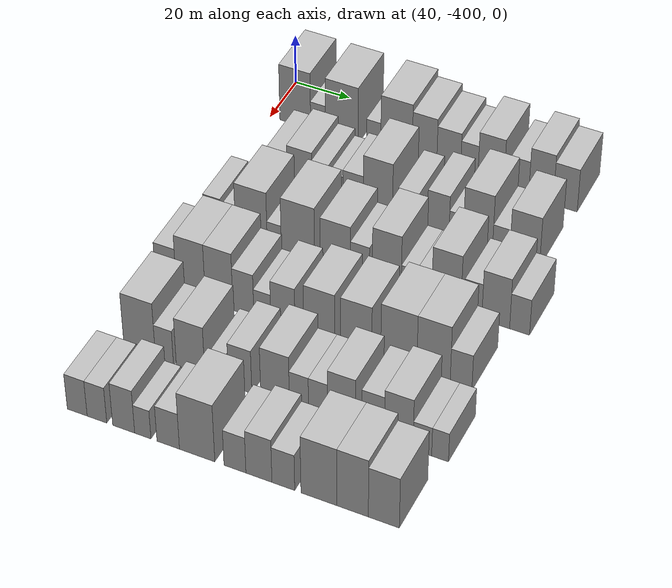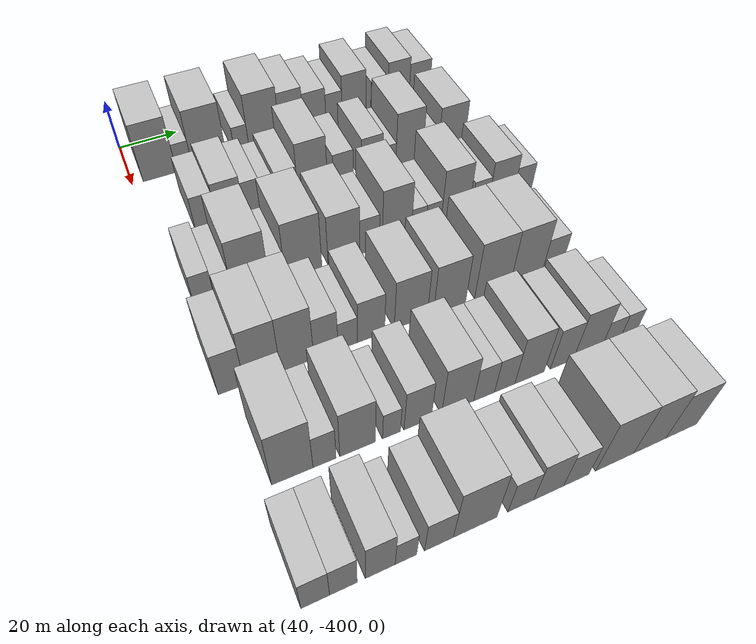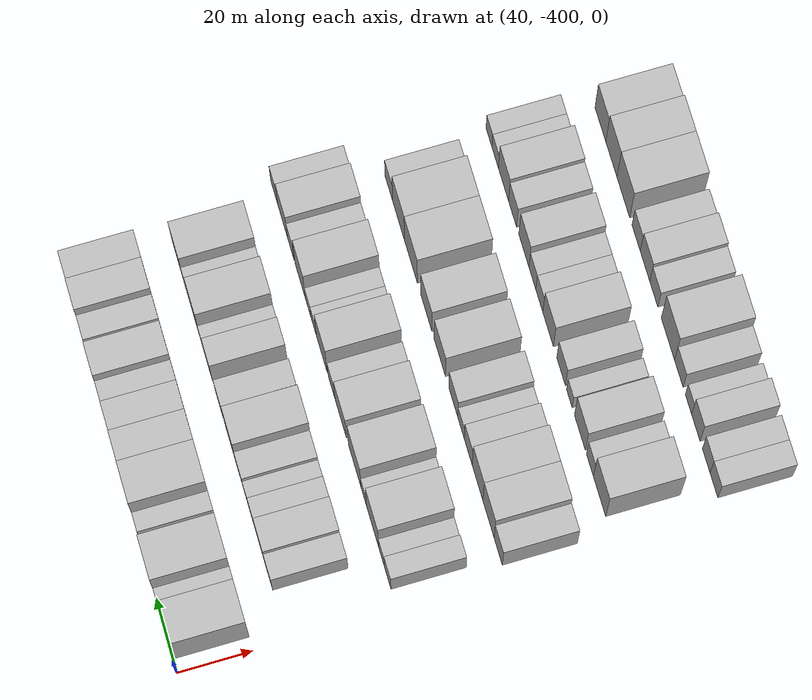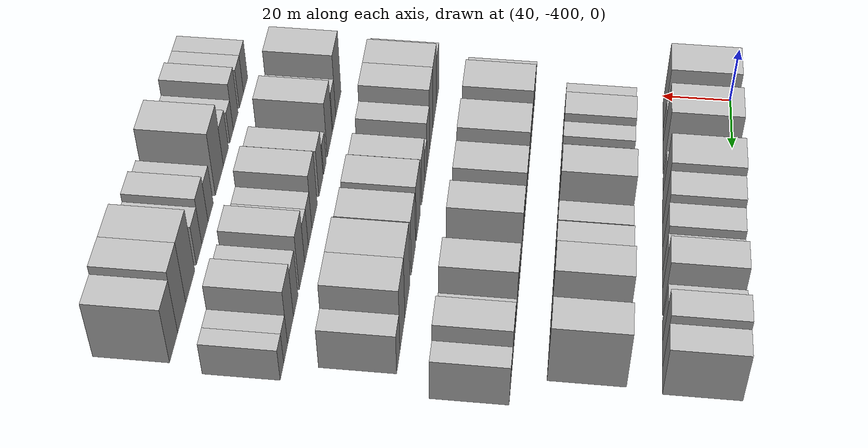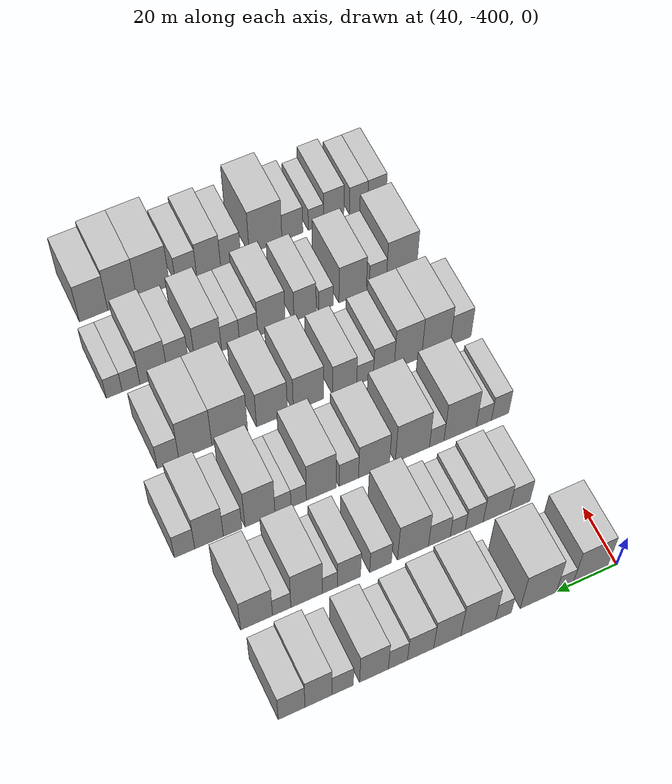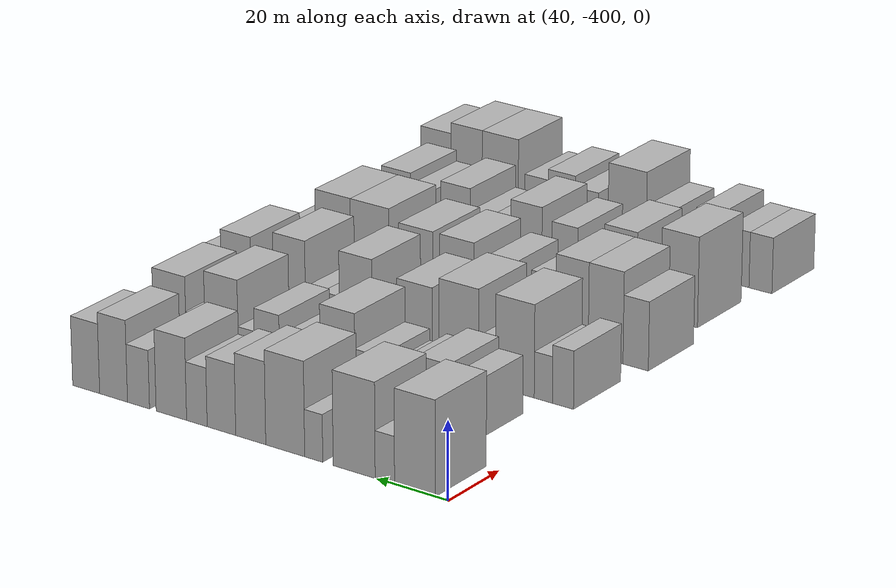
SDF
<sdf version="1.6">
 <world name="default">
  <model name="building_13">
   <static>1</static>
   <pose>50.0000 -390.6741 0 0.000000 0.000000 0.000000</pose>
   <link name="link">
    <pose>0 0 12.00 0 0 0</pose>
    <collision name="collision"><geometry><box><size>20.0000 11.3960 24.0000</size></box></geometry></collision>
    <visual name="visual">
     <cast_shadows>0</cast_shadows>
     <geometry><box><size>20.0000 11.3960 24.0000</size></box></geometry>
     <material>
      <script>
       <uri>model://HANNAS_wall/materials/scripts</uri>
       <uri>model://HANNAS_wall/materials/textures</uri>
       <name>vrc/HANNAS_wall</name>
      </script>
     </material>
    </visual>
   </link>
  </model>
  <model name="building_14">
   <static>1</static>
   <pose>50.0000 -382.2352 0 0.000000 0.000000 0.000000</pose>
   <link name="link">
    <pose>0 0 6.00 0 0 0</pose>
    <collision name="collision"><geometry><box><size>20.0000 5.4818 12.0000</size></box></geometry></collision>
    <visual name="visual">
     <cast_shadows>0</cast_shadows>
     <geometry><box><size>20.0000 5.4818 12.0000</size></box></geometry>
     <material>
      <script>
       <uri>model://HANNAS_wall/materials/scripts</uri>
       <uri>model://HANNAS_wall/materials/textures</uri>
       <name>vrc/HANNAS_wall</name>
      </script>
     </material>
    </visual>
   </link>
  </model>
  <model name="building_15">
   <static>1</static>
   <pose>50.0000 -373.5019 0 0.000000 0.000000 0.000000</pose>
   <link name="link">
    <pose>0 0 12.00 0 0 0</pose>
    <collision name="collision"><geometry><box><size>20.0000 11.9846 24.0000</size></box></geometry></collision>
    <visual name="visual">
     <cast_shadows>0</cast_shadows>
     <geometry><box><size>20.0000 11.9846 24.0000</size></box></geometry>
     <material>
      <script>
       <uri>model://HANNAS_wall/materials/scripts</uri>
       <uri>model://HANNAS_wall/materials/textures</uri>
       <name>vrc/HANNAS_wall</name>
      </script>
     </material>
    </visual>
   </link>
  </model>
  <model name="building_16">
   <static>1</static>
   <pose>50.0000 -361.9013 0 0.000000 0.000000 0.000000</pose>
   <link name="link">
    <pose>0 0 6.00 0 0 0</pose>
    <collision name="collision"><geometry><box><size>20.0000 5.2166 12.0000</size></box></geometry></collision>
    <visual name="visual">
     <cast_shadows>0</cast_shadows>
     <geometry><box><size>20.0000 5.2166 12.0000</size></box></geometry>
     <material>
      <script>
       <uri>model://HANNAS_wall/materials/scripts</uri>
       <uri>model://HANNAS_wall/materials/textures</uri>
       <name>vrc/HANNAS_wall</name>
      </script>
     </material>
    </visual>
   </link>
  </model>
  <model name="building_17">
   <static>1</static>
   <pose>50.0000 -353.6259 0 0.000000 0.000000 0.000000</pose>
   <link name="link">
    <pose>0 0 12.00 0 0 0</pose>
    <collision name="collision"><geometry><box><size>20.0000 11.3343 24.0000</size></box></geometry></collision>
    <visual name="visual">
     <cast_shadows>0</cast_shadows>
     <geometry><box><size>20.0000 11.3343 24.0000</size></box></geometry>
     <material>
      <script>
       <uri>model://HANNAS_wall/materials/scripts</uri>
       <uri>model://HANNAS_wall/materials/textures</uri>
       <name>vrc/HANNAS_wall</name>
      </script>
     </material>
    </visual>
   </link>
  </model>
  <model name="building_18">
   <static>1</static>
   <pose>50.0000 -343.5423 0 0.000000 0.000000 0.000000</pose>
   <link name="link">
    <pose>0 0 10.50 0 0 0</pose>
    <collision name="collision"><geometry><box><size>20.0000 8.8330 21.0000</size></box></geometry></collision>
    <visual name="visual">
     <cast_shadows>0</cast_shadows>
     <geometry><box><size>20.0000 8.8330 21.0000</size></box></geometry>
     <material>
      <script>
       <uri>model://HANNAS_wall/materials/scripts</uri>
       <uri>model://HANNAS_wall/materials/textures</uri>
       <name>vrc/HANNAS_wall</name>
      </script>
     </material>
    </visual>
   </link>
  </model>
  <model name="building_19">
   <static>1</static>
   <pose>50.0000 -334.8878 0 0.000000 0.000000 0.000000</pose>
   <link name="link">
    <pose>0 0 9.00 0 0 0</pose>
    <collision name="collision"><geometry><box><size>20.0000 8.4761 18.0000</size></box></geometry></collision>
    <visual name="visual">
     <cast_shadows>0</cast_shadows>
     <geometry><box><size>20.0000 8.4761 18.0000</size></box></geometry>
     <material>
      <script>
       <uri>model://HANNAS_wall/materials/scripts</uri>
       <uri>model://HANNAS_wall/materials/textures</uri>
       <name>vrc/HANNAS_wall</name>
      </script>
     </material>
    </visual>
   </link>
  </model>
  <model name="building_20">
   <static>1</static>
   <pose>50.0000 -327.5718 0 0.000000 0.000000 0.000000</pose>
   <link name="link">
    <pose>0 0 7.50 0 0 0</pose>
    <collision name="collision"><geometry><box><size>20.0000 6.1558 15.0000</size></box></geometry></collision>
    <visual name="visual">
     <cast_shadows>0</cast_shadows>
     <geometry><box><size>20.0000 6.1558 15.0000</size></box></geometry>
     <material>
      <script>
       <uri>model://HANNAS_wall/materials/scripts</uri>
       <uri>model://HANNAS_wall/materials/textures</uri>
       <name>vrc/HANNAS_wall</name>
      </script>
     </material>
    </visual>
   </link>
  </model>
  <model name="building_21">
   <static>1</static>
   <pose>50.0000 -319.9007 0 0.000000 0.000000 0.000000</pose>
   <link name="link">
    <pose>0 0 10.50 0 0 0</pose>
    <collision name="collision"><geometry><box><size>20.0000 9.1864 21.0000</size></box></geometry></collision>
    <visual name="visual">
     <cast_shadows>0</cast_shadows>
     <geometry><box><size>20.0000 9.1864 21.0000</size></box></geometry>
     <material>
      <script>
       <uri>model://HANNAS_wall/materials/scripts</uri>
       <uri>model://HANNAS_wall/materials/textures</uri>
       <name>vrc/HANNAS_wall</name>
      </script>
     </material>
    </visual>
   </link>
  </model>
  <model name="building_22">
   <static>1</static>
   <pose>50.0000 -309.9602 0 0.000000 0.000000 0.000000</pose>
   <link name="link">
    <pose>0 0 7.50 0 0 0</pose>
    <collision name="collision"><geometry><box><size>20.0000 6.6944 15.0000</size></box></geometry></collision>
    <visual name="visual">
     <cast_shadows>0</cast_shadows>
     <geometry><box><size>20.0000 6.6944 15.0000</size></box></geometry>
     <material>
      <script>
       <uri>model://HANNAS_wall/materials/scripts</uri>
       <uri>model://HANNAS_wall/materials/textures</uri>
       <name>vrc/HANNAS_wall</name>
      </script>
     </material>
    </visual>
   </link>
  </model>
  <model name="building_23">
   <static>1</static>
   <pose>50.0000 -302.3430 0 0.000000 0.000000 0.000000</pose>
   <link name="link">
    <pose>0 0 10.50 0 0 0</pose>
    <collision name="collision"><geometry><box><size>20.0000 8.5401 21.0000</size></box></geometry></collision>
    <visual name="visual">
     <cast_shadows>0</cast_shadows>
     <geometry><box><size>20.0000 8.5401 21.0000</size></box></geometry>
     <material>
      <script>
       <uri>model://HANNAS_wall/materials/scripts</uri>
       <uri>model://HANNAS_wall/materials/textures</uri>
       <name>vrc/HANNAS_wall</name>
      </script>
     </material>
    </visual>
   </link>
  </model>
  <model name="building_24">
   <static>1</static>
   <pose>50.0000 -293.9038 0 0.000000 0.000000 0.000000</pose>
   <link name="link">
    <pose>0 0 9.00 0 0 0</pose>
    <collision name="collision"><geometry><box><size>20.0000 8.3382 18.0000</size></box></geometry></collision>
    <visual name="visual">
     <cast_shadows>0</cast_shadows>
     <geometry><box><size>20.0000 8.3382 18.0000</size></box></geometry>
     <material>
      <script>
       <uri>model://HANNAS_wall/materials/scripts</uri>
       <uri>model://HANNAS_wall/materials/textures</uri>
       <name>vrc/HANNAS_wall</name>
      </script>
     </material>
    </visual>
   </link>
  </model>
  <model name="building_118">
   <static>1</static>
   <pose>79.0000 -382.9588 0 0.000000 0.000000 0.000000</pose>
   <link name="link">
    <pose>0 0 7.50 0 0 0</pose>
    <collision name="collision"><geometry><box><size>20.0000 6.9432 15.0000</size></box></geometry></collision>
    <visual name="visual">
     <cast_shadows>0</cast_shadows>
     <geometry><box><size>20.0000 6.9432 15.0000</size></box></geometry>
     <material>
      <script>
       <uri>model://HANNAS_wall/materials/scripts</uri>
       <uri>model://HANNAS_wall/materials/textures</uri>
       <name>vrc/HANNAS_wall</name>
      </script>
     </material>
    </visual>
   </link>
  </model>
  <model name="building_119">
   <static>1</static>
   <pose>79.0000 -374.9972 0 0.000000 0.000000 0.000000</pose>
   <link name="link">
    <pose>0 0 9.00 0 0 0</pose>
    <collision name="collision"><geometry><box><size>20.0000 8.9799 18.0000</size></box></geometry></collision>
    <visual name="visual">
     <cast_shadows>0</cast_shadows>
     <geometry><box><size>20.0000 8.9799 18.0000</size></box></geometry>
     <material>
      <script>
       <uri>model://HANNAS_wall/materials/scripts</uri>
       <uri>model://HANNAS_wall/materials/textures</uri>
       <name>vrc/HANNAS_wall</name>
      </script>
     </material>
    </visual>
   </link>
  </model>
  <model name="building_120">
   <static>1</static>
   <pose>79.0000 -367.4964 0 0.000000 0.000000 0.000000</pose>
   <link name="link">
    <pose>0 0 7.50 0 0 0</pose>
    <collision name="collision"><geometry><box><size>20.0000 6.0216 15.0000</size></box></geometry></collision>
    <visual name="visual">
     <cast_shadows>0</cast_shadows>
     <geometry><box><size>20.0000 6.0216 15.0000</size></box></geometry>
     <material>
      <script>
       <uri>model://HANNAS_wall/materials/scripts</uri>
       <uri>model://HANNAS_wall/materials/textures</uri>
       <name>vrc/HANNAS_wall</name>
      </script>
     </material>
    </visual>
   </link>
  </model>
  <model name="building_121">
   <static>1</static>
   <pose>79.0000 -361.9631 0 0.000000 0.000000 0.000000</pose>
   <link name="link">
    <pose>0 0 6.00 0 0 0</pose>
    <collision name="collision"><geometry><box><size>20.0000 5.0450 12.0000</size></box></geometry></collision>
    <visual name="visual">
     <cast_shadows>0</cast_shadows>
     <geometry><box><size>20.0000 5.0450 12.0000</size></box></geometry>
     <material>
      <script>
       <uri>model://HANNAS_wall/materials/scripts</uri>
       <uri>model://HANNAS_wall/materials/textures</uri>
       <name>vrc/HANNAS_wall</name>
      </script>
     </material>
    </visual>
   </link>
  </model>
  <model name="building_122">
   <static>1</static>
   <pose>79.0000 -355.7980 0 0.000000 0.000000 0.000000</pose>
   <link name="link">
    <pose>0 0 7.50 0 0 0</pose>
    <collision name="collision"><geometry><box><size>20.0000 7.2851 15.0000</size></box></geometry></collision>
    <visual name="visual">
     <cast_shadows>0</cast_shadows>
     <geometry><box><size>20.0000 7.2851 15.0000</size></box></geometry>
     <material>
      <script>
       <uri>model://HANNAS_wall/materials/scripts</uri>
       <uri>model://HANNAS_wall/materials/textures</uri>
       <name>vrc/HANNAS_wall</name>
      </script>
     </material>
    </visual>
   </link>
  </model>
  <model name="building_123">
   <static>1</static>
   <pose>79.0000 -347.0174 0 0.000000 0.000000 0.000000</pose>
   <link name="link">
    <pose>0 0 12.00 0 0 0</pose>
    <collision name="collision"><geometry><box><size>20.0000 10.2761 24.0000</size></box></geometry></collision>
    <visual name="visual">
     <cast_shadows>0</cast_shadows>
     <geometry><box><size>20.0000 10.2761 24.0000</size></box></geometry>
     <material>
      <script>
       <uri>model://HANNAS_wall/materials/scripts</uri>
       <uri>model://HANNAS_wall/materials/textures</uri>
       <name>vrc/HANNAS_wall</name>
      </script>
     </material>
    </visual>
   </link>
  </model>
  <model name="building_124">
   <static>1</static>
   <pose>79.0000 -336.2973 0 0.000000 0.000000 0.000000</pose>
   <link name="link">
    <pose>0 0 7.50 0 0 0</pose>
    <collision name="collision"><geometry><box><size>20.0000 7.1641 15.0000</size></box></geometry></collision>
    <visual name="visual">
     <cast_shadows>0</cast_shadows>
     <geometry><box><size>20.0000 7.1641 15.0000</size></box></geometry>
     <material>
      <script>
       <uri>model://HANNAS_wall/materials/scripts</uri>
       <uri>model://HANNAS_wall/materials/textures</uri>
       <name>vrc/HANNAS_wall</name>
      </script>
     </material>
    </visual>
   </link>
  </model>
  <model name="building_125">
   <static>1</static>
   <pose>79.0000 -325.9236 0 0.000000 0.000000 0.000000</pose>
   <link name="link">
    <pose>0 0 9.00 0 0 0</pose>
    <collision name="collision"><geometry><box><size>20.0000 7.5834 18.0000</size></box></geometry></collision>
    <visual name="visual">
     <cast_shadows>0</cast_shadows>
     <geometry><box><size>20.0000 7.5834 18.0000</size></box></geometry>
     <material>
      <script>
       <uri>model://HANNAS_wall/materials/scripts</uri>
       <uri>model://HANNAS_wall/materials/textures</uri>
       <name>vrc/HANNAS_wall</name>
      </script>
     </material>
    </visual>
   </link>
  </model>
  <model name="building_126">
   <static>1</static>
   <pose>79.0000 -319.6879 0 0.000000 0.000000 0.000000</pose>
   <link name="link">
    <pose>0 0 6.00 0 0 0</pose>
    <collision name="collision"><geometry><box><size>20.0000 4.8879 12.0000</size></box></geometry></collision>
    <visual name="visual">
     <cast_shadows>0</cast_shadows>
     <geometry><box><size>20.0000 4.8879 12.0000</size></box></geometry>
     <material>
      <script>
       <uri>model://HANNAS_wall/materials/scripts</uri>
       <uri>model://HANNAS_wall/materials/textures</uri>
       <name>vrc/HANNAS_wall</name>
      </script>
     </material>
    </visual>
   </link>
  </model>
  <model name="building_127">
   <static>1</static>
   <pose>79.0000 -312.1822 0 0.000000 0.000000 0.000000</pose>
   <link name="link">
    <pose>0 0 12.00 0 0 0</pose>
    <collision name="collision"><geometry><box><size>20.0000 10.1235 24.0000</size></box></geometry></collision>
    <visual name="visual">
     <cast_shadows>0</cast_shadows>
     <geometry><box><size>20.0000 10.1235 24.0000</size></box></geometry>
     <material>
      <script>
       <uri>model://HANNAS_wall/materials/scripts</uri>
       <uri>model://HANNAS_wall/materials/textures</uri>
       <name>vrc/HANNAS_wall</name>
      </script>
     </material>
    </visual>
   </link>
  </model>
  <model name="building_128">
   <static>1</static>
   <pose>79.0000 -304.1823 0 0.000000 0.000000 0.000000</pose>
   <link name="link">
    <pose>0 0 6.00 0 0 0</pose>
    <collision name="collision"><geometry><box><size>20.0000 5.8765 12.0000</size></box></geometry></collision>
    <visual name="visual">
     <cast_shadows>0</cast_shadows>
     <geometry><box><size>20.0000 5.8765 12.0000</size></box></geometry>
     <material>
      <script>
       <uri>model://HANNAS_wall/materials/scripts</uri>
       <uri>model://HANNAS_wall/materials/textures</uri>
       <name>vrc/HANNAS_wall</name>
      </script>
     </material>
    </visual>
   </link>
  </model>
  <model name="building_129">
   <static>1</static>
   <pose>79.0000 -296.1528 0 0.000000 0.000000 0.000000</pose>
   <link name="link">
    <pose>0 0 10.50 0 0 0</pose>
    <collision name="collision"><geometry><box><size>20.0000 10.1824 21.0000</size></box></geometry></collision>
    <visual name="visual">
     <cast_shadows>0</cast_shadows>
     <geometry><box><size>20.0000 10.1824 21.0000</size></box></geometry>
     <material>
      <script>
       <uri>model://HANNAS_wall/materials/scripts</uri>
       <uri>model://HANNAS_wall/materials/textures</uri>
       <name>vrc/HANNAS_wall</name>
      </script>
     </material>
    </visual>
   </link>
  </model>
  <model name="building_234">
   <static>1</static>
   <pose>108.0000 -391.6829 0 0.000000 0.000000 0.000000</pose>
   <link name="link">
    <pose>0 0 7.50 0 0 0</pose>
    <collision name="collision"><geometry><box><size>20.0000 6.0278 15.0000</size></box></geometry></collision>
    <visual name="visual">
     <cast_shadows>0</cast_shadows>
     <geometry><box><size>20.0000 6.0278 15.0000</size></box></geometry>
     <material>
      <script>
       <uri>model://HANNAS_wall/materials/scripts</uri>
       <uri>model://HANNAS_wall/materials/textures</uri>
       <name>vrc/HANNAS_wall</name>
      </script>
     </material>
    </visual>
   </link>
  </model>
  <model name="building_235">
   <static>1</static>
   <pose>108.0000 -386.0473 0 0.000000 0.000000 0.000000</pose>
   <link name="link">
    <pose>0 0 6.00 0 0 0</pose>
    <collision name="collision"><geometry><box><size>20.0000 5.2435 12.0000</size></box></geometry></collision>
    <visual name="visual">
     <cast_shadows>0</cast_shadows>
     <geometry><box><size>20.0000 5.2435 12.0000</size></box></geometry>
     <material>
      <script>
       <uri>model://HANNAS_wall/materials/scripts</uri>
       <uri>model://HANNAS_wall/materials/textures</uri>
       <name>vrc/HANNAS_wall</name>
      </script>
     </material>
    </visual>
   </link>
  </model>
  <model name="building_236">
   <static>1</static>
   <pose>108.0000 -377.8205 0 0.000000 0.000000 0.000000</pose>
   <link name="link">
    <pose>0 0 12.00 0 0 0</pose>
    <collision name="collision"><geometry><box><size>20.0000 11.2100 24.0000</size></box></geometry></collision>
    <visual name="visual">
     <cast_shadows>0</cast_shadows>
     <geometry><box><size>20.0000 11.2100 24.0000</size></box></geometry>
     <material>
      <script>
       <uri>model://HANNAS_wall/materials/scripts</uri>
       <uri>model://HANNAS_wall/materials/textures</uri>
       <name>vrc/HANNAS_wall</name>
      </script>
     </material>
    </visual>
   </link>
  </model>
  <model name="building_237">
   <static>1</static>
   <pose>108.0000 -369.7327 0 0.000000 0.000000 0.000000</pose>
   <link name="link">
    <pose>0 0 6.00 0 0 0</pose>
    <collision name="collision"><geometry><box><size>20.0000 4.9656 12.0000</size></box></geometry></collision>
    <visual name="visual">
     <cast_shadows>0</cast_shadows>
     <geometry><box><size>20.0000 4.9656 12.0000</size></box></geometry>
     <material>
      <script>
       <uri>model://HANNAS_wall/materials/scripts</uri>
       <uri>model://HANNAS_wall/materials/textures</uri>
       <name>vrc/HANNAS_wall</name>
      </script>
     </material>
    </visual>
   </link>
  </model>
  <model name="building_238">
   <static>1</static>
   <pose>108.0000 -361.4277 0 0.000000 0.000000 0.000000</pose>
   <link name="link">
    <pose>0 0 12.00 0 0 0</pose>
    <collision name="collision"><geometry><box><size>20.0000 11.6444 24.0000</size></box></geometry></collision>
    <visual name="visual">
     <cast_shadows>0</cast_shadows>
     <geometry><box><size>20.0000 11.6444 24.0000</size></box></geometry>
     <material>
      <script>
       <uri>model://HANNAS_wall/materials/scripts</uri>
       <uri>model://HANNAS_wall/materials/textures</uri>
       <name>vrc/HANNAS_wall</name>
      </script>
     </material>
    </visual>
   </link>
  </model>
  <model name="building_239">
   <static>1</static>
   <pose>108.0000 -348.3741 0 0.000000 0.000000 0.000000</pose>
   <link name="link">
    <pose>0 0 10.50 0 0 0</pose>
    <collision name="collision"><geometry><box><size>20.0000 10.4628 21.0000</size></box></geometry></collision>
    <visual name="visual">
     <cast_shadows>0</cast_shadows>
     <geometry><box><size>20.0000 10.4628 21.0000</size></box></geometry>
     <material>
      <script>
       <uri>model://HANNAS_wall/materials/scripts</uri>
       <uri>model://HANNAS_wall/materials/textures</uri>
       <name>vrc/HANNAS_wall</name>
      </script>
     </material>
    </visual>
   </link>
  </model>
  <model name="building_240">
   <static>1</static>
   <pose>108.0000 -339.8886 0 0.000000 0.000000 0.000000</pose>
   <link name="link">
    <pose>0 0 7.50 0 0 0</pose>
    <collision name="collision"><geometry><box><size>20.0000 6.5081 15.0000</size></box></geometry></collision>
    <visual name="visual">
     <cast_shadows>0</cast_shadows>
     <geometry><box><size>20.0000 6.5081 15.0000</size></box></geometry>
     <material>
      <script>
       <uri>model://HANNAS_wall/materials/scripts</uri>
       <uri>model://HANNAS_wall/materials/textures</uri>
       <name>vrc/HANNAS_wall</name>
      </script>
     </material>
    </visual>
   </link>
  </model>
  <model name="building_241">
   <static>1</static>
   <pose>108.0000 -330.6846 0 0.000000 0.000000 0.000000</pose>
   <link name="link">
    <pose>0 0 12.00 0 0 0</pose>
    <collision name="collision"><geometry><box><size>20.0000 9.8999 24.0000</size></box></geometry></collision>
    <visual name="visual">
     <cast_shadows>0</cast_shadows>
     <geometry><box><size>20.0000 9.8999 24.0000</size></box></geometry>
     <material>
      <script>
       <uri>model://HANNAS_wall/materials/scripts</uri>
       <uri>model://HANNAS_wall/materials/textures</uri>
       <name>vrc/HANNAS_wall</name>
      </script>
     </material>
    </visual>
   </link>
  </model>
  <model name="building_242">
   <static>1</static>
   <pose>108.0000 -323.1963 0 0.000000 0.000000 0.000000</pose>
   <link name="link">
    <pose>0 0 6.00 0 0 0</pose>
    <collision name="collision"><geometry><box><size>20.0000 5.0768 12.0000</size></box></geometry></collision>
    <visual name="visual">
     <cast_shadows>0</cast_shadows>
     <geometry><box><size>20.0000 5.0768 12.0000</size></box></geometry>
     <material>
      <script>
       <uri>model://HANNAS_wall/materials/scripts</uri>
       <uri>model://HANNAS_wall/materials/textures</uri>
       <name>vrc/HANNAS_wall</name>
      </script>
     </material>
    </visual>
   </link>
  </model>
  <model name="building_243">
   <static>1</static>
   <pose>108.0000 -318.0137 0 0.000000 0.000000 0.000000</pose>
   <link name="link">
    <pose>0 0 6.00 0 0 0</pose>
    <collision name="collision"><geometry><box><size>20.0000 5.2885 12.0000</size></box></geometry></collision>
    <visual name="visual">
     <cast_shadows>0</cast_shadows>
     <geometry><box><size>20.0000 5.2885 12.0000</size></box></geometry>
     <material>
      <script>
       <uri>model://HANNAS_wall/materials/scripts</uri>
       <uri>model://HANNAS_wall/materials/textures</uri>
       <name>vrc/HANNAS_wall</name>
      </script>
     </material>
    </visual>
   </link>
  </model>
  <model name="building_244">
   <static>1</static>
   <pose>108.0000 -310.4364 0 0.000000 0.000000 0.000000</pose>
   <link name="link">
    <pose>0 0 12.00 0 0 0</pose>
    <collision name="collision"><geometry><box><size>20.0000 9.8659 24.0000</size></box></geometry></collision>
    <visual name="visual">
     <cast_shadows>0</cast_shadows>
     <geometry><box><size>20.0000 9.8659 24.0000</size></box></geometry>
     <material>
      <script>
       <uri>model://HANNAS_wall/materials/scripts</uri>
       <uri>model://HANNAS_wall/materials/textures</uri>
       <name>vrc/HANNAS_wall</name>
      </script>
     </material>
    </visual>
   </link>
  </model>
  <model name="building_245">
   <static>1</static>
   <pose>108.0000 -301.4798 0 0.000000 0.000000 0.000000</pose>
   <link name="link">
    <pose>0 0 7.50 0 0 0</pose>
    <collision name="collision"><geometry><box><size>20.0000 6.0474 15.0000</size></box></geometry></collision>
    <visual name="visual">
     <cast_shadows>0</cast_shadows>
     <geometry><box><size>20.0000 6.0474 15.0000</size></box></geometry>
     <material>
      <script>
       <uri>model://HANNAS_wall/materials/scripts</uri>
       <uri>model://HANNAS_wall/materials/textures</uri>
       <name>vrc/HANNAS_wall</name>
      </script>
     </material>
    </visual>
   </link>
  </model>
  <model name="building_246">
   <static>1</static>
   <pose>108.0000 -293.8128 0 0.000000 0.000000 0.000000</pose>
   <link name="link">
    <pose>0 0 10.50 0 0 0</pose>
    <collision name="collision"><geometry><box><size>20.0000 9.2865 21.0000</size></box></geometry></collision>
    <visual name="visual">
     <cast_shadows>0</cast_shadows>
     <geometry><box><size>20.0000 9.2865 21.0000</size></box></geometry>
     <material>
      <script>
       <uri>model://HANNAS_wall/materials/scripts</uri>
       <uri>model://HANNAS_wall/materials/textures</uri>
       <name>vrc/HANNAS_wall</name>
      </script>
     </material>
    </visual>
   </link>
  </model>
  <model name="building_247">
   <static>1</static>
   <pose>108.0000 -285.8607 0 0.000000 0.000000 0.000000</pose>
   <link name="link">
    <pose>0 0 7.50 0 0 0</pose>
    <collision name="collision"><geometry><box><size>20.0000 6.6177 15.0000</size></box></geometry></collision>
    <visual name="visual">
     <cast_shadows>0</cast_shadows>
     <geometry><box><size>20.0000 6.6177 15.0000</size></box></geometry>
     <material>
      <script>
       <uri>model://HANNAS_wall/materials/scripts</uri>
       <uri>model://HANNAS_wall/materials/textures</uri>
       <name>vrc/HANNAS_wall</name>
      </script>
     </material>
    </visual>
   </link>
  </model>
  <model name="building_347">
   <static>1</static>
   <pose>137.0000 -393.0378 0 0.000000 0.000000 0.000000</pose>
   <link name="link">
    <pose>0 0 9.00 0 0 0</pose>
    <collision name="collision"><geometry><box><size>20.0000 7.3171 18.0000</size></box></geometry></collision>
    <visual name="visual">
     <cast_shadows>0</cast_shadows>
     <geometry><box><size>20.0000 7.3171 18.0000</size></box></geometry>
     <material>
      <script>
       <uri>model://HANNAS_wall/materials/scripts</uri>
       <uri>model://HANNAS_wall/materials/textures</uri>
       <name>vrc/HANNAS_wall</name>
      </script>
     </material>
    </visual>
   </link>
  </model>
  <model name="building_348">
   <static>1</static>
   <pose>137.0000 -384.3204 0 0.000000 0.000000 0.000000</pose>
   <link name="link">
    <pose>0 0 12.00 0 0 0</pose>
    <collision name="collision"><geometry><box><size>20.0000 10.1179 24.0000</size></box></geometry></collision>
    <visual name="visual">
     <cast_shadows>0</cast_shadows>
     <geometry><box><size>20.0000 10.1179 24.0000</size></box></geometry>
     <material>
      <script>
       <uri>model://HANNAS_wall/materials/scripts</uri>
       <uri>model://HANNAS_wall/materials/textures</uri>
       <name>vrc/HANNAS_wall</name>
      </script>
     </material>
    </visual>
   </link>
  </model>
  <model name="building_349">
   <static>1</static>
   <pose>137.0000 -374.4399 0 0.000000 0.000000 0.000000</pose>
   <link name="link">
    <pose>0 0 12.00 0 0 0</pose>
    <collision name="collision"><geometry><box><size>20.0000 9.6431 24.0000</size></box></geometry></collision>
    <visual name="visual">
     <cast_shadows>0</cast_shadows>
     <geometry><box><size>20.0000 9.6431 24.0000</size></box></geometry>
     <material>
      <script>
       <uri>model://HANNAS_wall/materials/scripts</uri>
       <uri>model://HANNAS_wall/materials/textures</uri>
       <name>vrc/HANNAS_wall</name>
      </script>
     </material>
    </visual>
   </link>
  </model>
  <model name="building_350">
   <static>1</static>
   <pose>137.0000 -366.0172 0 0.000000 0.000000 0.000000</pose>
   <link name="link">
    <pose>0 0 9.00 0 0 0</pose>
    <collision name="collision"><geometry><box><size>20.0000 7.2022 18.0000</size></box></geometry></collision>
    <visual name="visual">
     <cast_shadows>0</cast_shadows>
     <geometry><box><size>20.0000 7.2022 18.0000</size></box></geometry>
     <material>
      <script>
       <uri>model://HANNAS_wall/materials/scripts</uri>
       <uri>model://HANNAS_wall/materials/textures</uri>
       <name>vrc/HANNAS_wall</name>
      </script>
     </material>
    </visual>
   </link>
  </model>
  <model name="building_351">
   <static>1</static>
   <pose>137.0000 -359.5030 0 0.000000 0.000000 0.000000</pose>
   <link name="link">
    <pose>0 0 6.00 0 0 0</pose>
    <collision name="collision"><geometry><box><size>20.0000 5.8262 12.0000</size></box></geometry></collision>
    <visual name="visual">
     <cast_shadows>0</cast_shadows>
     <geometry><box><size>20.0000 5.8262 12.0000</size></box></geometry>
     <material>
      <script>
       <uri>model://HANNAS_wall/materials/scripts</uri>
       <uri>model://HANNAS_wall/materials/textures</uri>
       <name>vrc/HANNAS_wall</name>
      </script>
     </material>
    </visual>
   </link>
  </model>
  <model name="building_352">
   <static>1</static>
   <pose>137.0000 -352.4479 0 0.000000 0.000000 0.000000</pose>
   <link name="link">
    <pose>0 0 9.00 0 0 0</pose>
    <collision name="collision"><geometry><box><size>20.0000 8.2841 18.0000</size></box></geometry></collision>
    <visual name="visual">
     <cast_shadows>0</cast_shadows>
     <geometry><box><size>20.0000 8.2841 18.0000</size></box></geometry>
     <material>
      <script>
       <uri>model://HANNAS_wall/materials/scripts</uri>
       <uri>model://HANNAS_wall/materials/textures</uri>
       <name>vrc/HANNAS_wall</name>
      </script>
     </material>
    </visual>
   </link>
  </model>
  <model name="building_353">
   <static>1</static>
   <pose>137.0000 -340.0949 0 0.000000 0.000000 0.000000</pose>
   <link name="link">
    <pose>0 0 10.50 0 0 0</pose>
    <collision name="collision"><geometry><box><size>20.0000 10.4218 21.0000</size></box></geometry></collision>
    <visual name="visual">
     <cast_shadows>0</cast_shadows>
     <geometry><box><size>20.0000 10.4218 21.0000</size></box></geometry>
     <material>
      <script>
       <uri>model://HANNAS_wall/materials/scripts</uri>
       <uri>model://HANNAS_wall/materials/textures</uri>
       <name>vrc/HANNAS_wall</name>
      </script>
     </material>
    </visual>
   </link>
  </model>
  <model name="building_354">
   <static>1</static>
   <pose>137.0000 -327.6508 0 0.000000 0.000000 0.000000</pose>
   <link name="link">
    <pose>0 0 10.50 0 0 0</pose>
    <collision name="collision"><geometry><box><size>20.0000 10.4665 21.0000</size></box></geometry></collision>
    <visual name="visual">
     <cast_shadows>0</cast_shadows>
     <geometry><box><size>20.0000 10.4665 21.0000</size></box></geometry>
     <material>
      <script>
       <uri>model://HANNAS_wall/materials/scripts</uri>
       <uri>model://HANNAS_wall/materials/textures</uri>
       <name>vrc/HANNAS_wall</name>
      </script>
     </material>
    </visual>
   </link>
  </model>
  <model name="building_355">
   <static>1</static>
   <pose>137.0000 -313.4406 0 0.000000 0.000000 0.000000</pose>
   <link name="link">
    <pose>0 0 12.00 0 0 0</pose>
    <collision name="collision"><geometry><box><size>20.0000 11.9539 24.0000</size></box></geometry></collision>
    <visual name="visual">
     <cast_shadows>0</cast_shadows>
     <geometry><box><size>20.0000 11.9539 24.0000</size></box></geometry>
     <material>
      <script>
       <uri>model://HANNAS_wall/materials/scripts</uri>
       <uri>model://HANNAS_wall/materials/textures</uri>
       <name>vrc/HANNAS_wall</name>
      </script>
     </material>
    </visual>
   </link>
  </model>
  <model name="building_356">
   <static>1</static>
   <pose>137.0000 -301.9630 0 0.000000 0.000000 0.000000</pose>
   <link name="link">
    <pose>0 0 12.00 0 0 0</pose>
    <collision name="collision"><geometry><box><size>20.0000 11.0013 24.0000</size></box></geometry></collision>
    <visual name="visual">
     <cast_shadows>0</cast_shadows>
     <geometry><box><size>20.0000 11.0013 24.0000</size></box></geometry>
     <material>
      <script>
       <uri>model://HANNAS_wall/materials/scripts</uri>
       <uri>model://HANNAS_wall/materials/textures</uri>
       <name>vrc/HANNAS_wall</name>
      </script>
     </material>
    </visual>
   </link>
  </model>
  <model name="building_357">
   <static>1</static>
   <pose>137.0000 -292.9115 0 0.000000 0.000000 0.000000</pose>
   <link name="link">
    <pose>0 0 7.50 0 0 0</pose>
    <collision name="collision"><geometry><box><size>20.0000 7.1018 15.0000</size></box></geometry></collision>
    <visual name="visual">
     <cast_shadows>0</cast_shadows>
     <geometry><box><size>20.0000 7.1018 15.0000</size></box></geometry>
     <material>
      <script>
       <uri>model://HANNAS_wall/materials/scripts</uri>
       <uri>model://HANNAS_wall/materials/textures</uri>
       <name>vrc/HANNAS_wall</name>
      </script>
     </material>
    </visual>
   </link>
  </model>
  <model name="building_463">
   <static>1</static>
   <pose>166.0000 -386.6163 0 0.000000 0.000000 0.000000</pose>
   <link name="link">
    <pose>0 0 12.00 0 0 0</pose>
    <collision name="collision"><geometry><box><size>20.0000 10.8253 24.0000</size></box></geometry></collision>
    <visual name="visual">
     <cast_shadows>0</cast_shadows>
     <geometry><box><size>20.0000 10.8253 24.0000</size></box></geometry>
     <material>
      <script>
       <uri>model://HANNAS_wall/materials/scripts</uri>
       <uri>model://HANNAS_wall/materials/textures</uri>
       <name>vrc/HANNAS_wall</name>
      </script>
     </material>
    </visual>
   </link>
  </model>
  <model name="building_464">
   <static>1</static>
   <pose>166.0000 -378.1364 0 0.000000 0.000000 0.000000</pose>
   <link name="link">
    <pose>0 0 7.50 0 0 0</pose>
    <collision name="collision"><geometry><box><size>20.0000 6.1345 15.0000</size></box></geometry></collision>
    <visual name="visual">
     <cast_shadows>0</cast_shadows>
     <geometry><box><size>20.0000 6.1345 15.0000</size></box></geometry>
     <material>
      <script>
       <uri>model://HANNAS_wall/materials/scripts</uri>
       <uri>model://HANNAS_wall/materials/textures</uri>
       <name>vrc/HANNAS_wall</name>
      </script>
     </material>
    </visual>
   </link>
  </model>
  <model name="building_465">
   <static>1</static>
   <pose>166.0000 -369.2214 0 0.000000 0.000000 0.000000</pose>
   <link name="link">
    <pose>0 0 10.50 0 0 0</pose>
    <collision name="collision"><geometry><box><size>20.0000 9.6955 21.0000</size></box></geometry></collision>
    <visual name="visual">
     <cast_shadows>0</cast_shadows>
     <geometry><box><size>20.0000 9.6955 21.0000</size></box></geometry>
     <material>
      <script>
       <uri>model://HANNAS_wall/materials/scripts</uri>
       <uri>model://HANNAS_wall/materials/textures</uri>
       <name>vrc/HANNAS_wall</name>
      </script>
     </material>
    </visual>
   </link>
  </model>
  <model name="building_466">
   <static>1</static>
   <pose>166.0000 -359.8580 0 0.000000 0.000000 0.000000</pose>
   <link name="link">
    <pose>0 0 6.00 0 0 0</pose>
    <collision name="collision"><geometry><box><size>20.0000 5.0313 12.0000</size></box></geometry></collision>
    <visual name="visual">
     <cast_shadows>0</cast_shadows>
     <geometry><box><size>20.0000 5.0313 12.0000</size></box></geometry>
     <material>
      <script>
       <uri>model://HANNAS_wall/materials/scripts</uri>
       <uri>model://HANNAS_wall/materials/textures</uri>
       <name>vrc/HANNAS_wall</name>
      </script>
     </material>
    </visual>
   </link>
  </model>
  <model name="building_467">
   <static>1</static>
   <pose>166.0000 -352.4504 0 0.000000 0.000000 0.000000</pose>
   <link name="link">
    <pose>0 0 9.00 0 0 0</pose>
    <collision name="collision"><geometry><box><size>20.0000 7.7837 18.0000</size></box></geometry></collision>
    <visual name="visual">
     <cast_shadows>0</cast_shadows>
     <geometry><box><size>20.0000 7.7837 18.0000</size></box></geometry>
     <material>
      <script>
       <uri>model://HANNAS_wall/materials/scripts</uri>
       <uri>model://HANNAS_wall/materials/textures</uri>
       <name>vrc/HANNAS_wall</name>
      </script>
     </material>
    </visual>
   </link>
  </model>
  <model name="building_468">
   <static>1</static>
   <pose>166.0000 -340.7926 0 0.000000 0.000000 0.000000</pose>
   <link name="link">
    <pose>0 0 10.50 0 0 0</pose>
    <collision name="collision"><geometry><box><size>20.0000 9.5319 21.0000</size></box></geometry></collision>
    <visual name="visual">
     <cast_shadows>0</cast_shadows>
     <geometry><box><size>20.0000 9.5319 21.0000</size></box></geometry>
     <material>
      <script>
       <uri>model://HANNAS_wall/materials/scripts</uri>
       <uri>model://HANNAS_wall/materials/textures</uri>
       <name>vrc/HANNAS_wall</name>
      </script>
     </material>
    </visual>
   </link>
  </model>
  <model name="building_469">
   <static>1</static>
   <pose>166.0000 -332.8639 0 0.000000 0.000000 0.000000</pose>
   <link name="link">
    <pose>0 0 7.50 0 0 0</pose>
    <collision name="collision"><geometry><box><size>20.0000 6.3256 15.0000</size></box></geometry></collision>
    <visual name="visual">
     <cast_shadows>0</cast_shadows>
     <geometry><box><size>20.0000 6.3256 15.0000</size></box></geometry>
     <material>
      <script>
       <uri>model://HANNAS_wall/materials/scripts</uri>
       <uri>model://HANNAS_wall/materials/textures</uri>
       <name>vrc/HANNAS_wall</name>
      </script>
     </material>
    </visual>
   </link>
  </model>
  <model name="building_470">
   <static>1</static>
   <pose>166.0000 -326.5966 0 0.000000 0.000000 0.000000</pose>
   <link name="link">
    <pose>0 0 7.50 0 0 0</pose>
    <collision name="collision"><geometry><box><size>20.0000 6.2089 15.0000</size></box></geometry></collision>
    <visual name="visual">
     <cast_shadows>0</cast_shadows>
     <geometry><box><size>20.0000 6.2089 15.0000</size></box></geometry>
     <material>
      <script>
       <uri>model://HANNAS_wall/materials/scripts</uri>
       <uri>model://HANNAS_wall/materials/textures</uri>
       <name>vrc/HANNAS_wall</name>
      </script>
     </material>
    </visual>
   </link>
  </model>
  <model name="building_471">
   <static>1</static>
   <pose>166.0000 -318.9017 0 0.000000 0.000000 0.000000</pose>
   <link name="link">
    <pose>0 0 10.50 0 0 0</pose>
    <collision name="collision"><geometry><box><size>20.0000 9.1809 21.0000</size></box></geometry></collision>
    <visual name="visual">
     <cast_shadows>0</cast_shadows>
     <geometry><box><size>20.0000 9.1809 21.0000</size></box></geometry>
     <material>
      <script>
       <uri>model://HANNAS_wall/materials/scripts</uri>
       <uri>model://HANNAS_wall/materials/textures</uri>
       <name>vrc/HANNAS_wall</name>
      </script>
     </material>
    </visual>
   </link>
  </model>
  <model name="building_472">
   <static>1</static>
   <pose>166.0000 -308.6391 0 0.000000 0.000000 0.000000</pose>
   <link name="link">
    <pose>0 0 9.00 0 0 0</pose>
    <collision name="collision"><geometry><box><size>20.0000 7.3445 18.0000</size></box></geometry></collision>
    <visual name="visual">
     <cast_shadows>0</cast_shadows>
     <geometry><box><size>20.0000 7.3445 18.0000</size></box></geometry>
     <material>
      <script>
       <uri>model://HANNAS_wall/materials/scripts</uri>
       <uri>model://HANNAS_wall/materials/textures</uri>
       <name>vrc/HANNAS_wall</name>
      </script>
     </material>
    </visual>
   </link>
  </model>
  <model name="building_473">
   <static>1</static>
   <pose>166.0000 -300.3455 0 0.000000 0.000000 0.000000</pose>
   <link name="link">
    <pose>0 0 10.50 0 0 0</pose>
    <collision name="collision"><geometry><box><size>20.0000 9.2426 21.0000</size></box></geometry></collision>
    <visual name="visual">
     <cast_shadows>0</cast_shadows>
     <geometry><box><size>20.0000 9.2426 21.0000</size></box></geometry>
     <material>
      <script>
       <uri>model://HANNAS_wall/materials/scripts</uri>
       <uri>model://HANNAS_wall/materials/textures</uri>
       <name>vrc/HANNAS_wall</name>
      </script>
     </material>
    </visual>
   </link>
  </model>
  <model name="building_474">
   <static>1</static>
   <pose>166.0000 -292.7316 0 0.000000 0.000000 0.000000</pose>
   <link name="link">
    <pose>0 0 6.00 0 0 0</pose>
    <collision name="collision"><geometry><box><size>20.0000 5.9852 12.0000</size></box></geometry></collision>
    <visual name="visual">
     <cast_shadows>0</cast_shadows>
     <geometry><box><size>20.0000 5.9852 12.0000</size></box></geometry>
     <material>
      <script>
       <uri>model://HANNAS_wall/materials/scripts</uri>
       <uri>model://HANNAS_wall/materials/textures</uri>
       <name>vrc/HANNAS_wall</name>
      </script>
     </material>
    </visual>
   </link>
  </model>
  <model name="building_475">
   <static>1</static>
   <pose>166.0000 -287.0585 0 0.000000 0.000000 0.000000</pose>
   <link name="link">
    <pose>0 0 6.00 0 0 0</pose>
    <collision name="collision"><geometry><box><size>20.0000 5.3610 12.0000</size></box></geometry></collision>
    <visual name="visual">
     <cast_shadows>0</cast_shadows>
     <geometry><box><size>20.0000 5.3610 12.0000</size></box></geometry>
     <material>
      <script>
       <uri>model://HANNAS_wall/materials/scripts</uri>
       <uri>model://HANNAS_wall/materials/textures</uri>
       <name>vrc/HANNAS_wall</name>
      </script>
     </material>
    </visual>
   </link>
  </model>
  <model name="building_567">
   <static>1</static>
   <pose>195.0000 -392.0668 0 0.000000 0.000000 0.000000</pose>
   <link name="link">
    <pose>0 0 7.50 0 0 0</pose>
    <collision name="collision"><geometry><box><size>20.0000 6.7629 15.0000</size></box></geometry></collision>
    <visual name="visual">
     <cast_shadows>0</cast_shadows>
     <geometry><box><size>20.0000 6.7629 15.0000</size></box></geometry>
     <material>
      <script>
       <uri>model://HANNAS_wall/materials/scripts</uri>
       <uri>model://HANNAS_wall/materials/textures</uri>
       <name>vrc/HANNAS_wall</name>
      </script>
     </material>
    </visual>
   </link>
  </model>
  <model name="building_568">
   <static>1</static>
   <pose>195.0000 -385.3649 0 0.000000 0.000000 0.000000</pose>
   <link name="link">
    <pose>0 0 7.50 0 0 0</pose>
    <collision name="collision"><geometry><box><size>20.0000 6.6409 15.0000</size></box></geometry></collision>
    <visual name="visual">
     <cast_shadows>0</cast_shadows>
     <geometry><box><size>20.0000 6.6409 15.0000</size></box></geometry>
     <material>
      <script>
       <uri>model://HANNAS_wall/materials/scripts</uri>
       <uri>model://HANNAS_wall/materials/textures</uri>
       <name>vrc/HANNAS_wall</name>
      </script>
     </material>
    </visual>
   </link>
  </model>
  <model name="building_569">
   <static>1</static>
   <pose>195.0000 -376.3467 0 0.000000 0.000000 0.000000</pose>
   <link name="link">
    <pose>0 0 9.00 0 0 0</pose>
    <collision name="collision"><geometry><box><size>20.0000 7.3955 18.0000</size></box></geometry></collision>
    <visual name="visual">
     <cast_shadows>0</cast_shadows>
     <geometry><box><size>20.0000 7.3955 18.0000</size></box></geometry>
     <material>
      <script>
       <uri>model://HANNAS_wall/materials/scripts</uri>
       <uri>model://HANNAS_wall/materials/textures</uri>
       <name>vrc/HANNAS_wall</name>
      </script>
     </material>
    </visual>
   </link>
  </model>
  <model name="building_570">
   <static>1</static>
   <pose>195.0000 -369.9329 0 0.000000 0.000000 0.000000</pose>
   <link name="link">
    <pose>0 0 6.00 0 0 0</pose>
    <collision name="collision"><geometry><box><size>20.0000 5.4322 12.0000</size></box></geometry></collision>
    <visual name="visual">
     <cast_shadows>0</cast_shadows>
     <geometry><box><size>20.0000 5.4322 12.0000</size></box></geometry>
     <material>
      <script>
       <uri>model://HANNAS_wall/materials/scripts</uri>
       <uri>model://HANNAS_wall/materials/textures</uri>
       <name>vrc/HANNAS_wall</name>
      </script>
     </material>
    </visual>
   </link>
  </model>
  <model name="building_571">
   <static>1</static>
   <pose>195.0000 -361.4713 0 0.000000 0.000000 0.000000</pose>
   <link name="link">
    <pose>0 0 7.50 0 0 0</pose>
    <collision name="collision"><geometry><box><size>20.0000 7.4911 15.0000</size></box></geometry></collision>
    <visual name="visual">
     <cast_shadows>0</cast_shadows>
     <geometry><box><size>20.0000 7.4911 15.0000</size></box></geometry>
     <material>
      <script>
       <uri>model://HANNAS_wall/materials/scripts</uri>
       <uri>model://HANNAS_wall/materials/textures</uri>
       <name>vrc/HANNAS_wall</name>
      </script>
     </material>
    </visual>
   </link>
  </model>
  <model name="building_572">
   <static>1</static>
   <pose>195.0000 -351.9000 0 0.000000 0.000000 0.000000</pose>
   <link name="link">
    <pose>0 0 12.00 0 0 0</pose>
    <collision name="collision"><geometry><box><size>20.0000 11.6514 24.0000</size></box></geometry></collision>
    <visual name="visual">
     <cast_shadows>0</cast_shadows>
     <geometry><box><size>20.0000 11.6514 24.0000</size></box></geometry>
     <material>
      <script>
       <uri>model://HANNAS_wall/materials/scripts</uri>
       <uri>model://HANNAS_wall/materials/textures</uri>
       <name>vrc/HANNAS_wall</name>
      </script>
     </material>
    </visual>
   </link>
  </model>
  <model name="building_573">
   <static>1</static>
   <pose>195.0000 -339.4962 0 0.000000 0.000000 0.000000</pose>
   <link name="link">
    <pose>0 0 7.50 0 0 0</pose>
    <collision name="collision"><geometry><box><size>20.0000 7.1561 15.0000</size></box></geometry></collision>
    <visual name="visual">
     <cast_shadows>0</cast_shadows>
     <geometry><box><size>20.0000 7.1561 15.0000</size></box></geometry>
     <material>
      <script>
       <uri>model://HANNAS_wall/materials/scripts</uri>
       <uri>model://HANNAS_wall/materials/textures</uri>
       <name>vrc/HANNAS_wall</name>
      </script>
     </material>
    </visual>
   </link>
  </model>
  <model name="building_574">
   <static>1</static>
   <pose>195.0000 -331.7009 0 0.000000 0.000000 0.000000</pose>
   <link name="link">
    <pose>0 0 9.00 0 0 0</pose>
    <collision name="collision"><geometry><box><size>20.0000 8.4344 18.0000</size></box></geometry></collision>
    <visual name="visual">
     <cast_shadows>0</cast_shadows>
     <geometry><box><size>20.0000 8.4344 18.0000</size></box></geometry>
     <material>
      <script>
       <uri>model://HANNAS_wall/materials/scripts</uri>
       <uri>model://HANNAS_wall/materials/textures</uri>
       <name>vrc/HANNAS_wall</name>
      </script>
     </material>
    </visual>
   </link>
  </model>
  <model name="building_575">
   <static>1</static>
   <pose>195.0000 -323.8113 0 0.000000 0.000000 0.000000</pose>
   <link name="link">
    <pose>0 0 7.50 0 0 0</pose>
    <collision name="collision"><geometry><box><size>20.0000 7.3449 15.0000</size></box></geometry></collision>
    <visual name="visual">
     <cast_shadows>0</cast_shadows>
     <geometry><box><size>20.0000 7.3449 15.0000</size></box></geometry>
     <material>
      <script>
       <uri>model://HANNAS_wall/materials/scripts</uri>
       <uri>model://HANNAS_wall/materials/textures</uri>
       <name>vrc/HANNAS_wall</name>
      </script>
     </material>
    </visual>
   </link>
  </model>
  <model name="building_576">
   <static>1</static>
   <pose>195.0000 -312.4166 0 0.000000 0.000000 0.000000</pose>
   <link name="link">
    <pose>0 0 12.00 0 0 0</pose>
    <collision name="collision"><geometry><box><size>20.0000 11.4444 24.0000</size></box></geometry></collision>
    <visual name="visual">
     <cast_shadows>0</cast_shadows>
     <geometry><box><size>20.0000 11.4444 24.0000</size></box></geometry>
     <material>
      <script>
       <uri>model://HANNAS_wall/materials/scripts</uri>
       <uri>model://HANNAS_wall/materials/textures</uri>
       <name>vrc/HANNAS_wall</name>
      </script>
     </material>
    </visual>
   </link>
  </model>
  <model name="building_577">
   <static>1</static>
   <pose>195.0000 -301.7130 0 0.000000 0.000000 0.000000</pose>
   <link name="link">
    <pose>0 0 12.00 0 0 0</pose>
    <collision name="collision"><geometry><box><size>20.0000 9.9628 24.0000</size></box></geometry></collision>
    <visual name="visual">
     <cast_shadows>0</cast_shadows>
     <geometry><box><size>20.0000 9.9628 24.0000</size></box></geometry>
     <material>
      <script>
       <uri>model://HANNAS_wall/materials/scripts</uri>
       <uri>model://HANNAS_wall/materials/textures</uri>
       <name>vrc/HANNAS_wall</name>
      </script>
     </material>
    </visual>
   </link>
  </model>
  <model name="building_578">
   <static>1</static>
   <pose>195.0000 -291.8609 0 0.000000 0.000000 0.000000</pose>
   <link name="link">
    <pose>0 0 10.50 0 0 0</pose>
    <collision name="collision"><geometry><box><size>20.0000 9.7415 21.0000</size></box></geometry></collision>
    <visual name="visual">
     <cast_shadows>0</cast_shadows>
     <geometry><box><size>20.0000 9.7415 21.0000</size></box></geometry>
     <material>
      <script>
       <uri>model://HANNAS_wall/materials/scripts</uri>
       <uri>model://HANNAS_wall/materials/textures</uri>
       <name>vrc/HANNAS_wall</name>
      </script>
     </material>
    </visual>
   </link>
  </model>
 </world>
</sdf>
